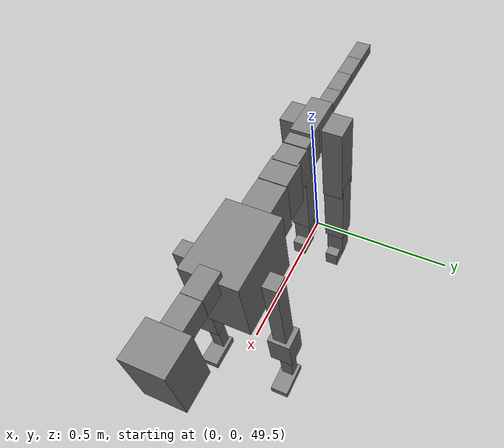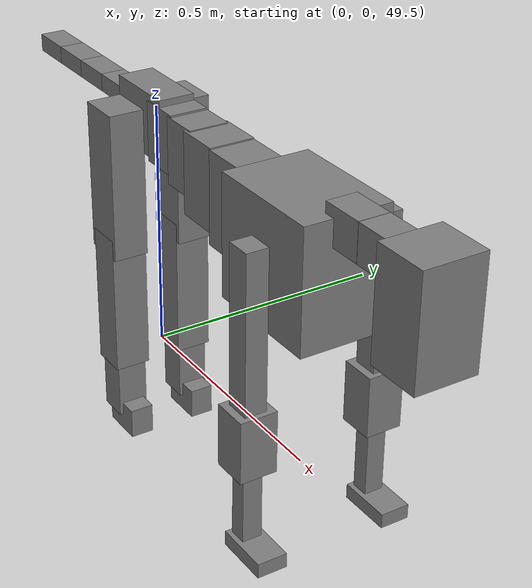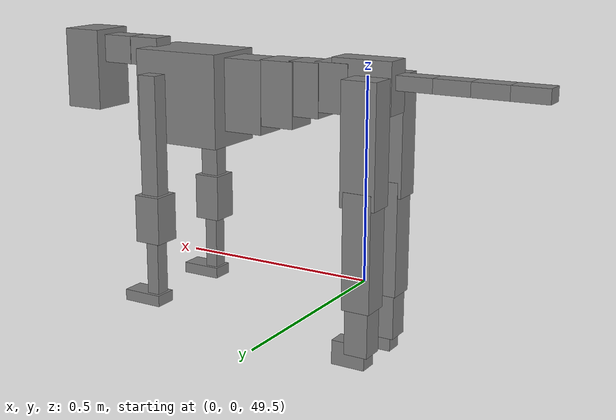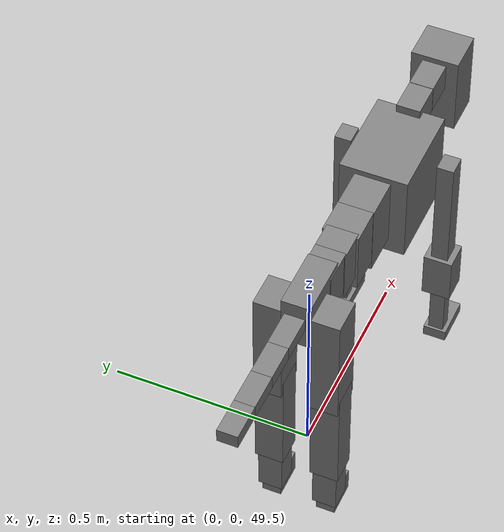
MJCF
<mujoco model="dog">

    <default>
        <joint armature="0.02" stiffness="1" damping="0.2" limited="true"/>
        <geom condim="3" friction="1 0.05 0.05" margin="0.01"/>
        <motor ctrllimited="true" ctrlrange="-1.0 1.0" forcelimited="true" gear="50"/>
    </default>

    <compiler inertiafromgeom="true" angle="radian"/>

    <option timestep="0.016" iterations="50" tolerance="1e-10" solver="Newton" jacobian="dense" cone="pyramidal"/>

    <size nconmax="20000" njmax="60000" nstack="5000000"/>
    <visual>
        <map force="0.1" zfar="30"/>
        <rgba haze="0.15 0.25 0.35 1"/>
        <quality shadowsize="2048"/>
        <global offwidth="800" offheight="800"/>
    </visual>

    <asset>
        <texture type="skybox" builtin="gradient" rgb1="0.3 0.5 0.7" rgb2="0 0 0" width="512" height="512"/>
        <texture name="texplane" type="2d" builtin="checker" rgb1=".2 .3 .4" rgb2=".1 0.15 0.2" width="512" height="512"
                 mark="cross" markrgb=".8 .8 .8"/>
        <texture name="texgeom" type="cube" builtin="flat" mark="cross" width="127" height="1278" rgb1="0.8 0.6 0.4"
                 rgb2="0.8 0.6 0.4" markrgb="1 1 1" random="0.01"/>

        <material name="matplane" reflectance="0.3" texture="texplane" texrepeat="1 1" texuniform="true"/>
        <material name="matgeom" texture="texgeom" texuniform="true" rgba="0.8 0.6 .4 1"/>
    </asset>

    <worldbody>
        <geom name="floor" pos="0 0 0" size="0 0 .25" type="plane" material="matplane" condim="3"/>

        <light directional="false" diffuse=".2 .2 .2" specular="0 0 0" pos="0 0 5" dir="0 0 -1" castshadow="false"/>
        <light mode="targetbodycom" target="torso" directional="false" diffuse=".8 .8 .8" specular="0.3 0.3 0.3"
               pos="0 0 4.0" dir="0 0 -1"/>

        <body name="root" pos="0 0 50">
            <freejoint name="root_1"/>
            <geom type="box" pos="0 0 -0.02" size="0.0774  0.0358  0.063" density="2030"/>

            <body name="spine1" pos="0.054 0 0">
                <joint name="spine1_y" axis="0 1 0" range="0 0.7" limited="true"/>
                <geom type="box" pos="0.02375 0 -0.03" size="0.04375  0.0375  0.05985" density="2030"/>

                <body name="spine2" pos="0.0612 0 0">
                    <joint name="spine2_y" axis="0 1 0" range="-0.15 0.15" limited="true"/>
                    <geom type="box" pos="0.03555  0  -0.04" size="0.04055  0.039  0.06615" density="2030"/>

                    <body name="spine3" pos="0.0730 0 0">
                        <joint name="spine3_y" axis="0 1 0" range="-0.15 0.15" limited="true"/>
                        <geom type="box" pos="0.03555  0  -0.057" size="0.04555  0.0445  0.081" density="2030"/>

                        <body name="spine4" pos="0.0780 0 0">
                            <joint name="spine4_y" axis="0 1 0" range="-0.15 0.15" limited="true"/>
                            <geom type="box" pos="0.05265  0  -0.07" size="0.05265  0.045  0.09135" density="2030"/>

                            <body name="torso" pos="0.1082 0 0">
                                <joint name="torso_y" axis="0 1 0" range="-0.15 0.15" limited="true"/>
                                <geom type="box" pos="0.11925  0  -0.085" size="0.11925  0.085  0.11745"
                                      density="2030"/>

                                <body name="neck1" pos="0.2160  0   0.0180">
                                    <joint name="neck1_y" axis="0 1 0" range="-1.2  -1" limited="true"/>
                                    <geom type="box" pos="0.0423  0  0" size="0.0423  0.03  0.036" density="2325"/>

                                    <body name="neck2" pos="0.0853  0  0">
                                        <joint name="neck2_y" axis="0 1 0" range="0.1  0" limited="true"/>
                                        <geom type="box" pos="0.0423  0  0" size="0.0423  0.03  0.036" density="2325"/>

                                        <body name="head" pos="0.0853  0  0">
                                            <joint name="head_y" axis="0 1 0" range="-0.3  -0.2" limited="true"/>
                                            <geom type="box" pos="0.0531  0  -0.055" size="0.0531  0.06  0.1044"
                                                  density="4030"/>

                                        </body>
                                    </body>
                                </body>

                                <body name="front_shoulder" pos="0.156  0   -0.0480">
                                    <joint name="front_shoulder_y" axis="0 1 0" range="-1 1.5" limited="true"/>
                                    <geom type="box" pos="0 0.13 -0.1387" size="0.0247  0.0211  0.1653" density="1158"/>
                                    <geom type="box" pos="0 -0.13 -0.1387" size="0.0247  0.0211  0.1653"
                                          density="1158"/>

                                    <body name="front_elbow" pos="0  0  -0.2773">
                                        <joint name="front_elbow_y" axis="0 1 0" range="-2 0" limited="true"/>
                                        <geom type="box" pos="0 0.13 -0.0607" size="0.0352  0.0360  0.0607"
                                              density="1081"/>
                                        <geom type="box" pos="0 -0.13 -0.0607" size="0.0352  0.0360  0.0607"
                                              density="1081"/>

                                        <body name="front_wrist" pos="0  0  -0.1215">
                                            <joint name="front_wrist_y" axis="0 1 0" range="-0.2 0" limited="true"/>
                                            <geom type="box" pos="0 0.13 -0.0772" size="0.0171  0.0190  0.0904"
                                                  density="1664"/>
                                            <geom type="box" pos="0 -0.13 -0.0772" size="0.0171  0.0190  0.0904"
                                                  density="1664"/>

                                            <body name="front_finger_end" pos="0  0  -0.1545">
                                                <joint name="front_finger_y" axis="0 1 0" range="-0.4 1"
                                                       limited="true"/>
                                                <geom type="box" pos="0.0290  0.13  0.0006"
                                                      size="0.0532  0.0290  0.0144" density="1515"/>
                                                <geom type="box" pos="0.0290  -0.13  0.0006"
                                                      size="0.0532  0.0290  0.0144" density="1515"/>

                                            </body>

                                        </body>
                                    </body>
                                </body>

                            </body>
                        </body>
                    </body>
                </body>
            </body>

            <body name="back_hip" pos="-0.03 0 -0.018">
                <joint name="back_hip_y" axis="0 1 0" range="-1.5 0.3" limited="true"/>
                <geom type="box" pos="0 0.07 -0.1261" size="0.0447  0.0351  0.1489" density="1154"/>
                <geom type="box" pos="0 -0.07 -0.1261" size="0.0447  0.0351  0.1489" density="1154"/>

                <body name="back_knee" pos="0  0  -0.2523">
                    <joint name="back_knee_y" axis="0 1 0" range="0 2.8" limited="true"/>
                    <geom type="box" pos="0 0.07 -0.1281" size="0.0363  0.0358  0.1437" density="1227"/>
                    <geom type="box" pos="0 -0.07 -0.1281" size="0.0363  0.0358  0.1437" density="1227"/>

                    <body name="back_ankle" pos="0  0  -0.2562">
                        <joint name="back_ankle_y" axis="0 1 0" range="-2.2 0" limited="true"/>
                        <geom type="box" pos="0 0.07 -0.0583" size="0.0303  0.0303  0.0695" density="1284"/>
                        <geom type="box" pos="0 -0.07 -0.0583" size="0.0303  0.0303  0.0695" density="1284"/>

                        <body name="back_toe_end" pos="0  0  -0.1166">
                            <joint name="back_toe_y" axis="0 1 0" range="-0.4 1" limited="true"/>
                            <geom type="box" pos="0.0237  0.07  -0.0157" size="0.0435  0.0237  0.0307" density="1515"/>
                            <geom type="box" pos="0.0237  -0.07  -0.0157" size="0.0435  0.0237  0.0307" density="1515"/>

                        </body>
                    </body>
                </body>
            </body>

            <body name="tail1" pos="-0.074 0 -0.006">
                <joint name="tail1_y" axis="0 1 0" range="-0.2 0.2" limited="true"/>
                <geom type="box" pos="-0.0536  0  0" size="0.045  0.025  0.0175" density="1587"/>

                <body name="tail2" pos="-0.09 0 0">
                    <joint name="tail2_y" axis="0 1 0" range="-0.2 0.2" limited="true"/>
                    <geom type="box" pos="-0.0536  0  0" size="0.045  0.025  0.0175" density="1587"/>

                    <body name="tail3" pos="-0.09 0 0">
                        <joint name="tail3_y" axis="0 1 0" range="-0.2 0.2" limited="true"/>
                        <geom type="box" pos="-0.0536  0  0" size="0.045  0.025  0.0175" density="1587"/>

                        <body name="tail4" pos="-0.09 0 0">
                            <joint name="tail4_y" axis="0 1 0" range="-0.2 0.2" limited="true"/>
                            <geom type="box" pos="-0.0536  0  0" size="0.045  0.025  0.0175" density="1587"/>

                        </body>
                    </body>
                </body>
            </body>
        </body>
    </worldbody>

    <actuator>
        <motor joint="spine1_y" forcerange="-150 150     "/>
        <motor joint="spine2_y" forcerange="-150 150     "/>
        <motor joint="spine3_y" forcerange="-150 150     "/>
        <motor joint="spine4_y" forcerange="-150 150     "/>
        <motor joint="torso_y" forcerange="-150 150     "/>
        <motor joint="neck1_y" forcerange="-100 100       "/>
        <motor joint="neck2_y" forcerange="-100 100       "/>
        <motor joint="head_y" forcerange="-150 150       "/>
        <motor joint="front_shoulder_y" forcerange="-112.16 128.47"/>
        <motor joint="front_elbow_y" forcerange="-164.87 196.82"/>
        <motor joint="front_wrist_y" forcerange="-96.12 55.74"/>
        <motor joint="front_finger_y" forcerange="-75.80 39.08"/>
        <motor joint="back_hip_y" forcerange="-355.32 312.52"/>
        <motor joint="back_knee_y" forcerange="-372.42 348.00"/>
        <motor joint="back_angle_y" forcerange="-176.69 208.00"/>
        <motor joint="back_toe_y" forcerange="-83.01 26.95"/>
        <motor joint="tail1_y" forcerange="-50 50     "/>
        <motor joint="tail2_y" forcerange="-50 50     "/>
        <motor joint="tail3_y" forcerange="-50 50     "/>
        <motor joint="tail4_y" forcerange="-50 50     "/>
    </actuator>
</mujoco>
